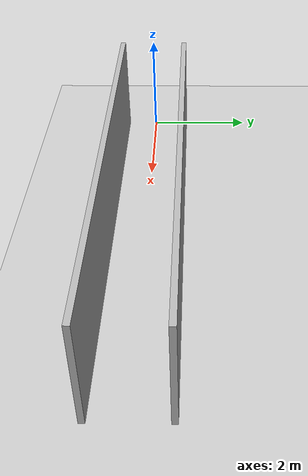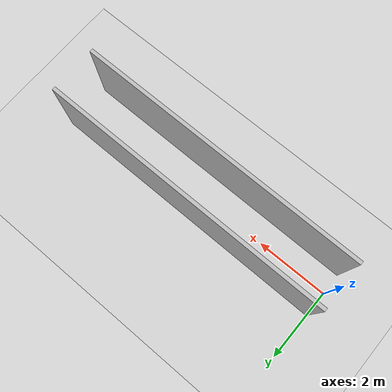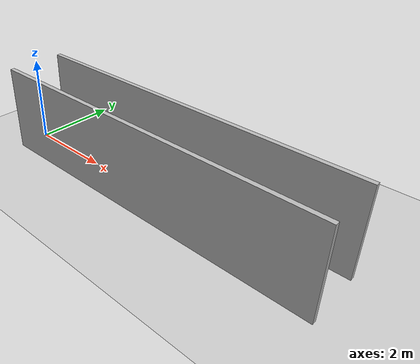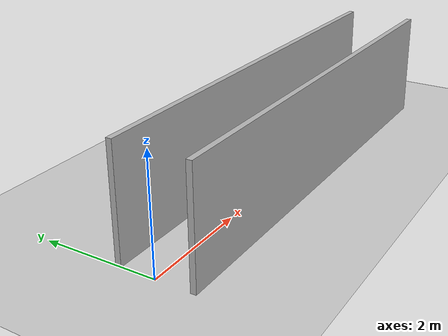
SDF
<?xml version="1.0"?>
<sdf version="1.9"><world name="narrow_passage"><plugin filename="gz-sim-physics-system" name="gz::sim::systems::Physics"/><plugin filename="gz-sim-scene-broadcaster-system" name="gz::sim::systems::SceneBroadcaster"/><include><uri>model://sun</uri></include><include><uri>model://ground_plane</uri></include><model name="left_wall"><static>true</static><pose>4 0.65 1 0 0 0</pose><link name="link"><collision name="c"><geometry><box><size>8 0.1 2</size></box></geometry></collision><visual name="v"><geometry><box><size>8 0.1 2</size></box></geometry></visual></link></model><model name="right_wall"><static>true</static><pose>4 -0.65 1 0 0 0</pose><link name="link"><collision name="c"><geometry><box><size>8 0.1 2</size></box></geometry></collision><visual name="v"><geometry><box><size>8 0.1 2</size></box></geometry></visual></link></model></world></sdf>
